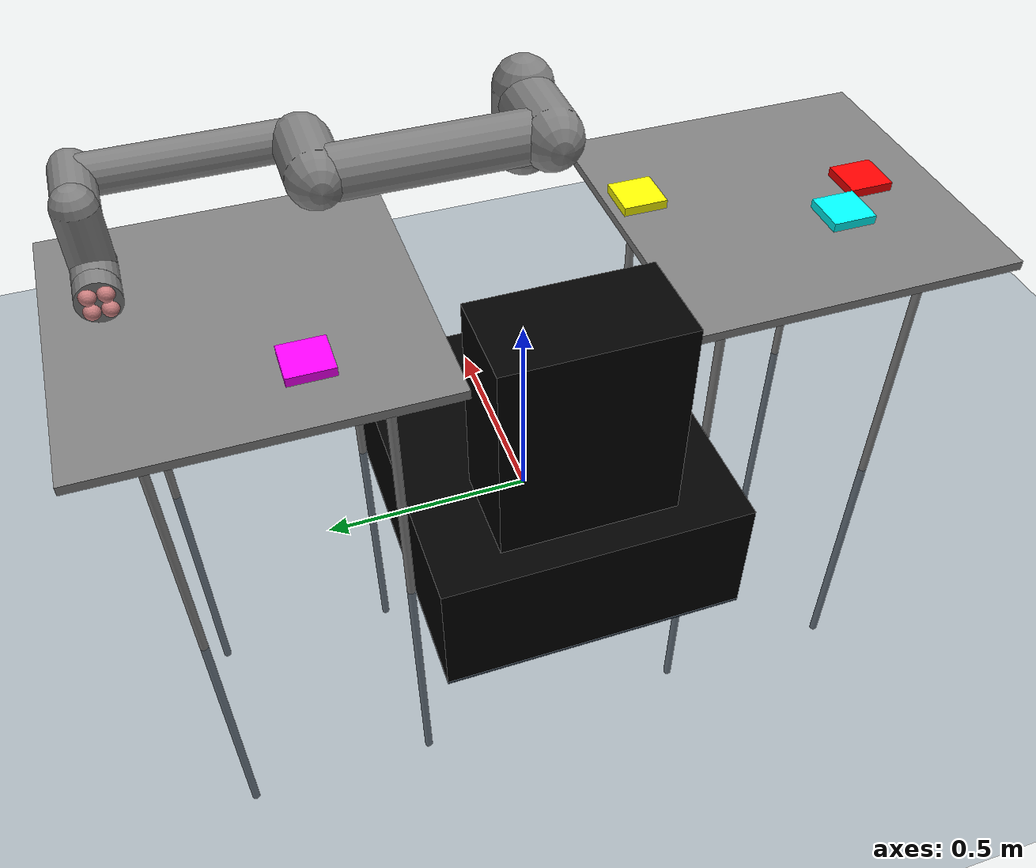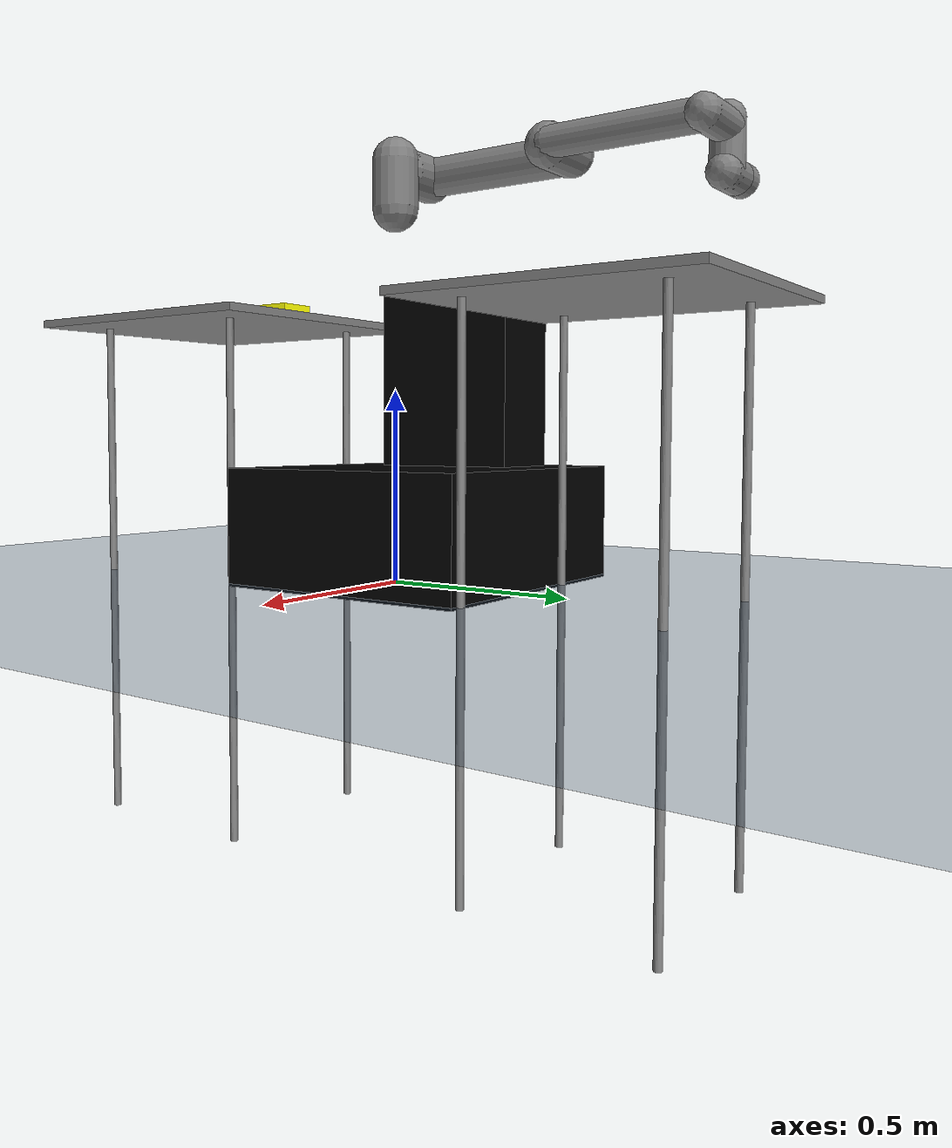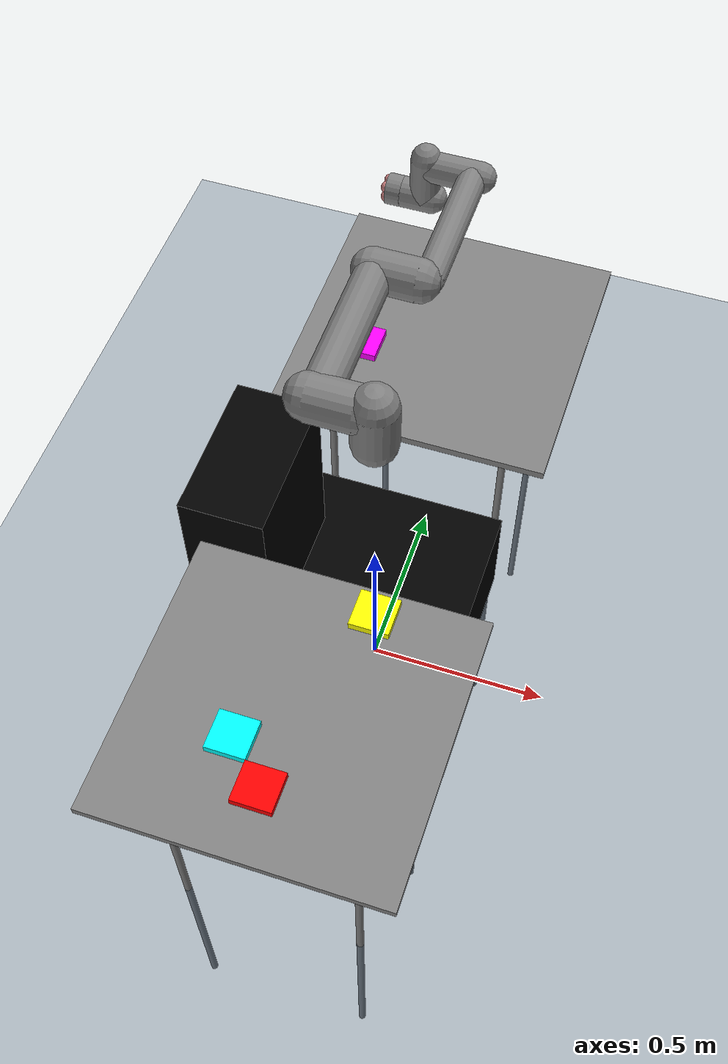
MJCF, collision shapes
<mujoco model="tableworld">
  <compiler angle="radian"/>
  <option integrator="implicitfast"/>
  <visual>
    <global azimuth="120" elevation="-20"/>
    <headlight diffuse="0.6 0.6 0.6" specular="0 0 0"/>
    <rgba haze="0.15 0.25 0.35 1"/>
  </visual>
  <statistic extent="0.8" center="0.3 0 0.4"/>
  <default class="main">
    <default class="/"/>
    <default class="rethink_mount_stationary/"/>
    <default class="rethink_mount_stationary/ur5e/">
      <default class="rethink_mount_stationary/ur5e/ur5e">
        <material shininess="0.25"/>
        <joint range="-6.28319 6.28319" armature="0.1"/>
        <site size="0.001 0.005 0.005" group="4" rgba="0.5 0.5 0.5 0.3"/>
        <general ctrlrange="-6.2831 6.2831" forcerange="-150 150" biastype="affine" gainprm="2000" biasprm="0 -2000 -400"/>
        <default class="rethink_mount_stationary/ur5e/size3">
          <default class="rethink_mount_stationary/ur5e/size3_limited">
            <joint range="-3.1415 3.1415"/>
            <general ctrlrange="-3.1415 3.1415"/>
          </default>
        </default>
        <default class="rethink_mount_stationary/ur5e/size1">
          <general forcerange="-28 28" gainprm="500" biasprm="0 -500 -100"/>
        </default>
        <default class="rethink_mount_stationary/ur5e/visual">
          <geom type="mesh" contype="0" conaffinity="0" group="2"/>
        </default>
        <default class="rethink_mount_stationary/ur5e/collision">
          <geom type="capsule" group="3"/>
          <default class="rethink_mount_stationary/ur5e/eef_collision">
            <geom type="cylinder"/>
          </default>
        </default>
      </default>
    </default>
    <default class="rethink_mount_stationary/ur5e/adhesive gripper/active_adhesion">
      <geom margin="0.01" gap="0.01" rgba="0.8 0.5 0.5 1"/>
    </default>
  </default>
  <asset>
    <texture type="skybox" name="//unnamed_texture_0" builtin="gradient" rgb1="0.3 0.5 0.7" rgb2="0 0 0" width="512" height="3072"/>
    <texture type="2d" name="groundplane" builtin="checker" mark="edge" rgb1="0.2 0.3 0.4" rgb2="0.1 0.2 0.3" markrgb="0.8 0.8 0.8" width="300" height="300"/>
    <material name="groundplane" class="/" texture="groundplane" texuniform="true" texrepeat="5 5" reflectance="0.2"/>
    <material name="rethink_mount_stationary/ur5e/black" class="rethink_mount_stationary/ur5e/ur5e" rgba="0.033 0.033 0.033 1"/>
    <material name="rethink_mount_stationary/ur5e/jointgray" class="rethink_mount_stationary/ur5e/ur5e" rgba="0.278 0.278 0.278 1"/>
    <material name="rethink_mount_stationary/ur5e/linkgray" class="rethink_mount_stationary/ur5e/ur5e" rgba="0.82 0.82 0.82 1"/>
    <material name="rethink_mount_stationary/ur5e/urblue" class="rethink_mount_stationary/ur5e/ur5e" rgba="0.49 0.678 0.8 1"/>
    <mesh name="rethink_mount_stationary/pedestal" class="rethink_mount_stationary/" file="pedestal-5e7ab40dad67858f3d51b3d2d13720c271905995.stl"/>
    <mesh name="rethink_mount_stationary/ur5e/base_0" class="rethink_mount_stationary/ur5e/" file="base_0-d5328a99917358d9aa384f12743fe73698461d1c.obj"/>
    <mesh name="rethink_mount_stationary/ur5e/base_1" class="rethink_mount_stationary/ur5e/" file="base_1-d1c667ae5f87b9c900fdeadad850205153846396.obj"/>
    <mesh name="rethink_mount_stationary/ur5e/shoulder_0" class="rethink_mount_stationary/ur5e/" file="shoulder_0-89051b80580d45ef39cb220bf068742b01770552.obj"/>
    <mesh name="rethink_mount_stationary/ur5e/shoulder_1" class="rethink_mount_stationary/ur5e/" file="shoulder_1-50ba15e82459989cf7f17cba7b1aafbca2781206.obj"/>
    <mesh name="rethink_mount_stationary/ur5e/shoulder_2" class="rethink_mount_stationary/ur5e/" file="shoulder_2-29ad171bec79e2912abb81d250aaf5ff9a67bc60.obj"/>
    <mesh name="rethink_mount_stationary/ur5e/upperarm_0" class="rethink_mount_stationary/ur5e/" file="upperarm_0-16bfdf8d1b19d35ef0adbc4cf29ab0c7edb62dcf.obj"/>
    <mesh name="rethink_mount_stationary/ur5e/upperarm_1" class="rethink_mount_stationary/ur5e/" file="upperarm_1-c53724435bec35e1b608145457af767b038f4fd1.obj"/>
    <mesh name="rethink_mount_stationary/ur5e/upperarm_2" class="rethink_mount_stationary/ur5e/" file="upperarm_2-199e0d0c1baa55a078742ed298800ff26d072c09.obj"/>
    <mesh name="rethink_mount_stationary/ur5e/upperarm_3" class="rethink_mount_stationary/ur5e/" file="upperarm_3-62f2bba935d9ab94800a49bcb6ede7b0fa9dd071.obj"/>
    <mesh name="rethink_mount_stationary/ur5e/forearm_0" class="rethink_mount_stationary/ur5e/" file="forearm_0-7994229075bdd0e4a5c860ca174278ee8eda8229.obj"/>
    <mesh name="rethink_mount_stationary/ur5e/forearm_1" class="rethink_mount_stationary/ur5e/" file="forearm_1-c72848167eef89e0d9801ddd7da516e7e878776e.obj"/>
    <mesh name="rethink_mount_stationary/ur5e/forearm_2" class="rethink_mount_stationary/ur5e/" file="forearm_2-3a33518f421ed893ff9b0d759af07b0e5900e78c.obj"/>
    <mesh name="rethink_mount_stationary/ur5e/forearm_3" class="rethink_mount_stationary/ur5e/" file="forearm_3-54cad2556a94cdda04a7cef5c84554a7d9f3ab03.obj"/>
    <mesh name="rethink_mount_stationary/ur5e/wrist1_0" class="rethink_mount_stationary/ur5e/" file="wrist1_0-6876ccb9d0084054268dd6aec007e5a61aea6c2d.obj"/>
    <mesh name="rethink_mount_stationary/ur5e/wrist1_1" class="rethink_mount_stationary/ur5e/" file="wrist1_1-0f7e6640a9dfb98e58078997f5f82bd433879387.obj"/>
    <mesh name="rethink_mount_stationary/ur5e/wrist1_2" class="rethink_mount_stationary/ur5e/" file="wrist1_2-3f6dcae8c736e2c42db3746db7f24ac4516aaca7.obj"/>
    <mesh name="rethink_mount_stationary/ur5e/wrist2_0" class="rethink_mount_stationary/ur5e/" file="wrist2_0-fdb3f7bc360f8f37f6be6270c8b507291dc9b01c.obj"/>
    <mesh name="rethink_mount_stationary/ur5e/wrist2_1" class="rethink_mount_stationary/ur5e/" file="wrist2_1-258ca475798c530d954723dc29f3d67086ead0d9.obj"/>
    <mesh name="rethink_mount_stationary/ur5e/wrist2_2" class="rethink_mount_stationary/ur5e/" file="wrist2_2-c6734971531db7f2f09e746377aa9faccb69b192.obj"/>
    <mesh name="rethink_mount_stationary/ur5e/wrist3" class="rethink_mount_stationary/ur5e/" file="wrist3-a1fffb4f599e121fb18be40e087b6fd7fb164e59.obj"/>
  </asset>
  <worldbody>
    <geom name="floor" class="/" size="0 0 0.05" type="plane" material="groundplane"/>
    <site name="//unnamed_site_0" class="/" pos="0 0 0" size="1e-06"/>
    <camera name="top-right" class="/" pos="2.5 1.2 2.5" quat="0.47416 0.259035 0.403423 0.73846"/>
    <light name="//unnamed_light_0" class="/" pos="0 0 1.5" dir="0 0 -1" directional="true"/>
    <body name="table_left" pos="0 -0.6 0">
      <geom name="table_left_top" class="/" size="0.37 0.37 0.01" pos="0 0 0.7" type="box"/>
      <geom name="table_left_leg_1" class="/" size="0.01 0.7" pos="0.24 -0.24 0" type="cylinder"/>
      <geom name="table_left_leg_2" class="/" size="0.01 0.7" pos="0.24 0.24 0" type="cylinder"/>
      <geom name="table_left_leg_3" class="/" size="0.01 0.7" pos="-0.24 -0.24 0" type="cylinder"/>
      <geom name="table_left_leg_4" class="/" size="0.01 0.7" pos="-0.24 0.24 0" type="cylinder"/>
    </body>
    <body name="table_right" pos="0 0.6 0">
      <geom name="table_right_top" class="/" size="0.37 0.37 0.01" pos="0 0 0.7" type="box"/>
      <geom name="table_right_leg_1" class="/" size="0.01 0.7" pos="0.24 -0.24 0" type="cylinder"/>
      <geom name="table_right_leg_2" class="/" size="0.01 0.7" pos="0.24 0.24 0" type="cylinder"/>
      <geom name="table_right_leg_3" class="/" size="0.01 0.7" pos="-0.24 -0.24 0" type="cylinder"/>
      <geom name="table_right_leg_4" class="/" size="0.01 0.7" pos="-0.24 0.24 0" type="cylinder"/>
    </body>
    <body name="red_box" pos="0 -0.8 0.72" quat="0 0 1 0">
      <joint name="//unnamed_joint_0" type="free" limited="false" actuatorfrclimited="false"/>
      <geom name="//unnamed_geom_11" class="/" size="0.05 0.05 0.01" type="box" rgba="1 0 0 1"/>
    </body>
    <body name="yellow box" pos="0.1 -0.3 0.72">
      <joint name="//unnamed_joint_1" type="free" limited="false" actuatorfrclimited="false"/>
      <geom name="//unnamed_geom_12" class="/" size="0.05 0.05 0.01" type="box" rgba="1 1 0 1"/>
    </body>
    <body name="cyan box" pos="-0.1 -0.7 0.72">
      <joint name="//unnamed_joint_2" type="free" limited="false" actuatorfrclimited="false"/>
      <geom name="//unnamed_geom_13" class="/" size="0.05 0.05 0.01" type="box" rgba="0 1 1 1"/>
    </body>
    <body name="purple box" pos="-0.2 0.5 0.72">
      <joint name="//unnamed_joint_3" type="free" limited="false" actuatorfrclimited="false"/>
      <geom name="//unnamed_geom_14" class="/" size="0.05 0.05 0.01" type="box" rgba="1 0 1 1"/>
    </body>
    <body name="rethink_mount_stationary/">
      <body name="rethink_mount_stationary/base" pos="0 0 0.903">
        <site name="rethink_mount_stationary//unnamed_site_0" class="rethink_mount_stationary/" pos="0 0 0" size="1e-06"/>
        <body name="rethink_mount_stationary/controller_box">
          <inertial pos="-0.325 0 -0.38" mass="46.64" diaginertia="1.71363 1.27988 0.809981"/>
          <geom name="rethink_mount_stationary/controller_box_col" class="rethink_mount_stationary/" size="0.11 0.2 0.265" pos="-0.325 0 -0.38" type="box" rgba="0 0 0 0"/>
        </body>
        <body name="rethink_mount_stationary/pedestal_feet">
          <inertial pos="-0.1225 0 -0.758" mass="167.09" diaginertia="8.16095 9.59375 15.0785"/>
          <geom name="rethink_mount_stationary/pedestal_feet_col" class="rethink_mount_stationary/" size="0.385 0.35 0.155" pos="-0.1225 0 -0.758" type="box" rgba="0 0 0 0"/>
        </body>
        <body name="rethink_mount_stationary/torso">
          <inertial pos="0 0 0" mass="0.0001" diaginertia="1e-08 1e-08 1e-08"/>
          <geom name="rethink_mount_stationary/torso_vis" class="rethink_mount_stationary/" size="0.05 0.05 0.05" pos="0 0 -0.05" type="box" contype="0" conaffinity="0" group="1" rgba="0.2 0.2 0.2 0"/>
        </body>
        <body name="rethink_mount_stationary/pedestal">
          <inertial pos="0 0 0" quat="0.659267 -0.259505 -0.260945 0.655692" mass="60.864" diaginertia="6.0869 5.81635 4.20915"/>
          <geom name="rethink_mount_stationary/pedestal_vis" class="rethink_mount_stationary/" type="mesh" contype="0" conaffinity="0" group="1" rgba="0.2 0.2 0.2 1" mesh="rethink_mount_stationary/pedestal"/>
          <geom name="rethink_mount_stationary/pedestal_col" class="rethink_mount_stationary/" size="0.18 0.31" pos="-0.02 0 -0.29" type="cylinder" contype="0" conaffinity="0" rgba="0.2 0.2 0.2 0"/>
        </body>
        <body name="rethink_mount_stationary/ur5e/">
          <light name="rethink_mount_stationary/ur5e/spotlight" class="rethink_mount_stationary/ur5e/" target="rethink_mount_stationary/ur5e/wrist_2_link" pos="0 -1 2" dir="0 0 -1" mode="targetbodycom"/>
          <body name="rethink_mount_stationary/ur5e/base" childclass="rethink_mount_stationary/ur5e/ur5e" quat="0.707107 0 0 0.707107">
            <inertial pos="0 0 0" mass="4" diaginertia="0.00443333 0.00443333 0.0072"/>
            <geom name="rethink_mount_stationary/ur5e//unnamed_geom_0" class="rethink_mount_stationary/ur5e/visual" material="rethink_mount_stationary/ur5e/black" mesh="rethink_mount_stationary/ur5e/base_0"/>
            <geom name="rethink_mount_stationary/ur5e//unnamed_geom_1" class="rethink_mount_stationary/ur5e/visual" material="rethink_mount_stationary/ur5e/jointgray" mesh="rethink_mount_stationary/ur5e/base_1"/>
            <body name="rethink_mount_stationary/ur5e/shoulder_link" pos="0 0 0.163">
              <inertial pos="0 0 0" mass="3.7" diaginertia="0.0102675 0.0102675 0.00666"/>
              <joint name="rethink_mount_stationary/ur5e/shoulder_pan_joint" class="rethink_mount_stationary/ur5e/size3" pos="0 0 0" axis="0 0 1"/>
              <geom name="rethink_mount_stationary/ur5e//unnamed_geom_2" class="rethink_mount_stationary/ur5e/visual" material="rethink_mount_stationary/ur5e/urblue" mesh="rethink_mount_stationary/ur5e/shoulder_0"/>
              <geom name="rethink_mount_stationary/ur5e//unnamed_geom_3" class="rethink_mount_stationary/ur5e/visual" material="rethink_mount_stationary/ur5e/black" mesh="rethink_mount_stationary/ur5e/shoulder_1"/>
              <geom name="rethink_mount_stationary/ur5e//unnamed_geom_4" class="rethink_mount_stationary/ur5e/visual" material="rethink_mount_stationary/ur5e/jointgray" mesh="rethink_mount_stationary/ur5e/shoulder_2"/>
              <geom name="rethink_mount_stationary/ur5e//unnamed_geom_5" class="rethink_mount_stationary/ur5e/collision" size="0.06 0.06" pos="0 0 -0.04"/>
              <body name="rethink_mount_stationary/ur5e/upper_arm_link" pos="0 0.138 0" quat="0.707107 0 0.707107 0">
                <inertial pos="0 0 0.2125" mass="8.393" diaginertia="0.133886 0.133886 0.0151074"/>
                <joint name="rethink_mount_stationary/ur5e/shoulder_lift_joint" class="rethink_mount_stationary/ur5e/size3" pos="0 0 0" axis="0 1 0"/>
                <geom name="rethink_mount_stationary/ur5e//unnamed_geom_6" class="rethink_mount_stationary/ur5e/visual" material="rethink_mount_stationary/ur5e/linkgray" mesh="rethink_mount_stationary/ur5e/upperarm_0"/>
                <geom name="rethink_mount_stationary/ur5e//unnamed_geom_7" class="rethink_mount_stationary/ur5e/visual" material="rethink_mount_stationary/ur5e/black" mesh="rethink_mount_stationary/ur5e/upperarm_1"/>
                <geom name="rethink_mount_stationary/ur5e//unnamed_geom_8" class="rethink_mount_stationary/ur5e/visual" material="rethink_mount_stationary/ur5e/jointgray" mesh="rethink_mount_stationary/ur5e/upperarm_2"/>
                <geom name="rethink_mount_stationary/ur5e//unnamed_geom_9" class="rethink_mount_stationary/ur5e/visual" material="rethink_mount_stationary/ur5e/urblue" mesh="rethink_mount_stationary/ur5e/upperarm_3"/>
                <geom name="rethink_mount_stationary/ur5e//unnamed_geom_10" class="rethink_mount_stationary/ur5e/collision" size="0.06 0.06" pos="0 -0.04 0" quat="0.707107 0.707107 0 0"/>
                <geom name="rethink_mount_stationary/ur5e//unnamed_geom_11" class="rethink_mount_stationary/ur5e/collision" size="0.05 0.2" pos="0 0 0.2"/>
                <body name="rethink_mount_stationary/ur5e/forearm_link" pos="0 -0.131 0.425">
                  <inertial pos="0 0 0.196" mass="2.275" diaginertia="0.0311796 0.0311796 0.004095"/>
                  <joint name="rethink_mount_stationary/ur5e/elbow_joint" class="rethink_mount_stationary/ur5e/size3_limited" pos="0 0 0" axis="0 1 0"/>
                  <geom name="rethink_mount_stationary/ur5e//unnamed_geom_12" class="rethink_mount_stationary/ur5e/visual" material="rethink_mount_stationary/ur5e/urblue" mesh="rethink_mount_stationary/ur5e/forearm_0"/>
                  <geom name="rethink_mount_stationary/ur5e//unnamed_geom_13" class="rethink_mount_stationary/ur5e/visual" material="rethink_mount_stationary/ur5e/linkgray" mesh="rethink_mount_stationary/ur5e/forearm_1"/>
                  <geom name="rethink_mount_stationary/ur5e//unnamed_geom_14" class="rethink_mount_stationary/ur5e/visual" material="rethink_mount_stationary/ur5e/black" mesh="rethink_mount_stationary/ur5e/forearm_2"/>
                  <geom name="rethink_mount_stationary/ur5e//unnamed_geom_15" class="rethink_mount_stationary/ur5e/visual" material="rethink_mount_stationary/ur5e/jointgray" mesh="rethink_mount_stationary/ur5e/forearm_3"/>
                  <geom name="rethink_mount_stationary/ur5e//unnamed_geom_16" class="rethink_mount_stationary/ur5e/collision" size="0.055 0.06" pos="0 0.08 0" quat="0.707107 0.707107 0 0"/>
                  <geom name="rethink_mount_stationary/ur5e//unnamed_geom_17" class="rethink_mount_stationary/ur5e/collision" size="0.038 0.19" pos="0 0 0.2"/>
                  <body name="rethink_mount_stationary/ur5e/wrist_1_link" pos="0 0 0.392" quat="0.707107 0 0.707107 0">
                    <inertial pos="0 0.127 0" mass="1.219" diaginertia="0.0025599 0.0025599 0.0021942"/>
                    <joint name="rethink_mount_stationary/ur5e/wrist_1_joint" class="rethink_mount_stationary/ur5e/size1" pos="0 0 0" axis="0 1 0"/>
                    <geom name="rethink_mount_stationary/ur5e//unnamed_geom_18" class="rethink_mount_stationary/ur5e/visual" material="rethink_mount_stationary/ur5e/black" mesh="rethink_mount_stationary/ur5e/wrist1_0"/>
                    <geom name="rethink_mount_stationary/ur5e//unnamed_geom_19" class="rethink_mount_stationary/ur5e/visual" material="rethink_mount_stationary/ur5e/urblue" mesh="rethink_mount_stationary/ur5e/wrist1_1"/>
                    <geom name="rethink_mount_stationary/ur5e//unnamed_geom_20" class="rethink_mount_stationary/ur5e/visual" material="rethink_mount_stationary/ur5e/jointgray" mesh="rethink_mount_stationary/ur5e/wrist1_2"/>
                    <geom name="rethink_mount_stationary/ur5e//unnamed_geom_21" class="rethink_mount_stationary/ur5e/collision" size="0.04 0.07" pos="0 0.05 0" quat="0.707107 0.707107 0 0"/>
                    <body name="rethink_mount_stationary/ur5e/wrist_2_link" pos="0 0.127 0">
                      <inertial pos="0 0 0.1" mass="1.219" diaginertia="0.0025599 0.0025599 0.0021942"/>
                      <joint name="rethink_mount_stationary/ur5e/wrist_2_joint" class="rethink_mount_stationary/ur5e/size1" pos="0 0 0" axis="0 0 1"/>
                      <geom name="rethink_mount_stationary/ur5e//unnamed_geom_22" class="rethink_mount_stationary/ur5e/visual" material="rethink_mount_stationary/ur5e/black" mesh="rethink_mount_stationary/ur5e/wrist2_0"/>
                      <geom name="rethink_mount_stationary/ur5e//unnamed_geom_23" class="rethink_mount_stationary/ur5e/visual" material="rethink_mount_stationary/ur5e/urblue" mesh="rethink_mount_stationary/ur5e/wrist2_1"/>
                      <geom name="rethink_mount_stationary/ur5e//unnamed_geom_24" class="rethink_mount_stationary/ur5e/visual" material="rethink_mount_stationary/ur5e/jointgray" mesh="rethink_mount_stationary/ur5e/wrist2_2"/>
                      <geom name="rethink_mount_stationary/ur5e//unnamed_geom_25" class="rethink_mount_stationary/ur5e/collision" size="0.04 0.06" pos="0 0 0.04"/>
                      <geom name="rethink_mount_stationary/ur5e//unnamed_geom_26" class="rethink_mount_stationary/ur5e/collision" size="0.04 0.04" pos="0 0.02 0.1" quat="0.707107 0.707107 0 0"/>
                      <body name="rethink_mount_stationary/ur5e/wrist_3_link" pos="0 0 0.1">
                        <inertial pos="0 0.0771683 0" quat="0.707107 0 0 0.707107" mass="0.1889" diaginertia="0.000132134 9.90863e-05 9.90863e-05"/>
                        <joint name="rethink_mount_stationary/ur5e/wrist_3_joint" class="rethink_mount_stationary/ur5e/size1" pos="0 0 0" axis="0 1 0"/>
                        <geom name="rethink_mount_stationary/ur5e//unnamed_geom_27" class="rethink_mount_stationary/ur5e/visual" material="rethink_mount_stationary/ur5e/linkgray" mesh="rethink_mount_stationary/ur5e/wrist3"/>
                        <geom name="rethink_mount_stationary/ur5e//unnamed_geom_28" class="rethink_mount_stationary/ur5e/eef_collision" size="0.04 0.02" pos="0 0.08 0" quat="0.707107 0.707107 0 0"/>
                        <site name="rethink_mount_stationary/ur5e/attachment_site" pos="0 0.1 0" quat="-0.707107 0.707107 0 0"/>
                        <body name="rethink_mount_stationary/ur5e/adhesive gripper/" pos="0 0.1 0" quat="-0.707107 0.707107 0 0">
                          <body name="rethink_mount_stationary/ur5e/adhesive gripper/4boxes" childclass="rethink_mount_stationary/ur5e/adhesive gripper/active_adhesion" quat="0 0 1 0">
                            <geom name="rethink_mount_stationary/ur5e/adhesive gripper//unnamed_geom_0" size="0.015" pos="0.015 0.015 0"/>
                            <geom name="rethink_mount_stationary/ur5e/adhesive gripper//unnamed_geom_1" size="0.015" pos="0.015 -0.015 0"/>
                            <geom name="rethink_mount_stationary/ur5e/adhesive gripper//unnamed_geom_2" size="0.015" pos="-0.015 0.015 0"/>
                            <geom name="rethink_mount_stationary/ur5e/adhesive gripper//unnamed_geom_3" size="0.015" pos="-0.015 -0.015 0"/>
                            <site name="rethink_mount_stationary/ur5e/adhesive gripper/force_sensor" pos="0 0 0" group="3"/>
                          </body>
                        </body>
                      </body>
                    </body>
                  </body>
                </body>
              </body>
            </body>
          </body>
        </body>
      </body>
    </body>
  </worldbody>
  <actuator>
    <general name="rethink_mount_stationary/ur5e/shoulder_pan" class="rethink_mount_stationary/ur5e/size3" joint="rethink_mount_stationary/ur5e/shoulder_pan_joint"/>
    <general name="rethink_mount_stationary/ur5e/shoulder_lift" class="rethink_mount_stationary/ur5e/size3" joint="rethink_mount_stationary/ur5e/shoulder_lift_joint"/>
    <general name="rethink_mount_stationary/ur5e/elbow" class="rethink_mount_stationary/ur5e/size3_limited" joint="rethink_mount_stationary/ur5e/elbow_joint"/>
    <general name="rethink_mount_stationary/ur5e/wrist_1" class="rethink_mount_stationary/ur5e/size1" joint="rethink_mount_stationary/ur5e/wrist_1_joint"/>
    <general name="rethink_mount_stationary/ur5e/wrist_2" class="rethink_mount_stationary/ur5e/size1" joint="rethink_mount_stationary/ur5e/wrist_2_joint"/>
    <general name="rethink_mount_stationary/ur5e/wrist_3" class="rethink_mount_stationary/ur5e/size1" joint="rethink_mount_stationary/ur5e/wrist_3_joint"/>
    <general name="rethink_mount_stationary/ur5e/adhesive gripper/adhere_arm" class="rethink_mount_stationary/ur5e/adhesive gripper/active_adhesion" body="rethink_mount_stationary/ur5e/adhesive gripper/4boxes" ctrllimited="true" ctrlrange="0 1" gainprm="30"/>
  </actuator>
  <sensor>
    <force site="rethink_mount_stationary/ur5e/adhesive gripper/force_sensor" name="rethink_mount_stationary/ur5e/adhesive gripper//unnamed_sensor_0"/>
  </sensor>
</mujoco>
